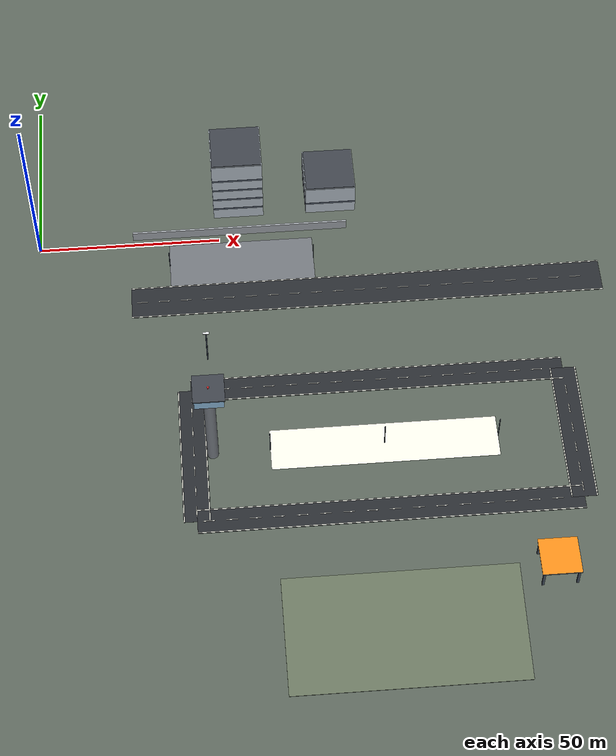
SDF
<sdf version="1.9">
 <world name="autonomous_city">
  <model name="ground">
   <static>true</static>
   <link name="link">
    <collision name="collision">
     <geometry><plane><normal>0 0 1</normal><size>600 600</size></plane></geometry>
     <surface><friction><ode><mu>100</mu><mu2>50</mu2></ode></friction></surface>
    </collision>
    <visual name="visual">
     <geometry><plane><normal>0 0 1</normal><size>600 600</size></plane></geometry>
     <material>
      <ambient>0.36 0.40 0.36 1</ambient>
      <diffuse>0.36 0.40 0.36 1</diffuse>
      <specular>0.15 0.15 0.15 1</specular>
     </material>
    </visual>
   </link>
  </model>
  <model name="ops_tower">
   <static>true</static>
   <pose>45 -70 0 0 0 0</pose>
   <link name="link">
    <visual name="mast">
     <pose>0 0 14.0 0 0 0</pose>
     <geometry><cylinder><radius>1.500</radius><length>28.000</length></cylinder></geometry>
     <material>
      <ambient>0.48 0.50 0.53 1</ambient>
      <diffuse>0.48 0.50 0.53 1</diffuse>
      <specular>0.15 0.15 0.15 1</specular>
     </material>
    </visual>
    <collision name="mast_c">
     <pose>0 0 14.0 0 0 0</pose>
     <geometry><cylinder><radius>1.500</radius><length>28.000</length></cylinder></geometry>
    </collision>
    <visual name="cabin">
     <pose>0 0 29.5 0 0 0</pose>
     <geometry><box><size>7.500 7.500 3.000</size></box></geometry>
     <material>
      <ambient>0.55 0.72 0.85 0.9</ambient>
      <diffuse>0.55 0.72 0.85 0.9</diffuse>
      <specular>0.15 0.15 0.15 1</specular>
     </material>
    </visual>
    <collision name="cabin_c">
     <pose>0 0 29.5 0 0 0</pose>
     <geometry><box><size>7.500 7.500 3.000</size></box></geometry>
    </collision>
    <visual name="cabin_roof">
     <pose>0 0 31.15 0 0 0</pose>
     <geometry><box><size>8.100 8.100 0.300</size></box></geometry>
     <material>
      <ambient>0.24 0.26 0.29 1</ambient>
      <diffuse>0.24 0.26 0.29 1</diffuse>
      <specular>0.15 0.15 0.15 1</specular>
     </material>
    </visual>
    <collision name="cabin_roof_c">
     <pose>0 0 31.15 0 0 0</pose>
     <geometry><box><size>8.100 8.100 0.300</size></box></geometry>
    </collision>
    <visual name="beacon">
     <pose>0 0 31.6 0 0 0</pose>
     <geometry><cylinder><radius>0.250</radius><length>0.500</length></cylinder></geometry>
     <material>
      <ambient>0.95 0.20 0.20 1</ambient>
      <diffuse>0.95 0.20 0.20 1</diffuse>
      <specular>0.15 0.15 0.15 1</specular>
      <emissive>0.6 0.1 0.1 1</emissive>
     </material>
    </visual>
   </link>
  </model>
  <model name="ops_mast_02">
   <static>true</static>
   <pose>45 -40 0 0 0 0</pose>
   <link name="link">
    <visual name="mast">
     <pose>0 0 6.0 0 0 0</pose>
     <geometry><cylinder><radius>0.180</radius><length>12.000</length></cylinder></geometry>
     <material>
      <ambient>0.26 0.30 0.36 1</ambient>
      <diffuse>0.26 0.30 0.36 1</diffuse>
      <specular>0.15 0.15 0.15 1</specular>
     </material>
    </visual>
    <collision name="mast_c">
     <pose>0 0 6.0 0 0 0</pose>
     <geometry><cylinder><radius>0.180</radius><length>12.000</length></cylinder></geometry>
    </collision>
    <visual name="head">
     <pose>0 0 12.15 0 0 0</pose>
     <geometry><box><size>1.600 0.600 0.300</size></box></geometry>
     <material>
      <ambient>0.92 0.93 0.94 1</ambient>
      <diffuse>0.92 0.93 0.94 1</diffuse>
      <specular>0.15 0.15 0.15 1</specular>
      <emissive>0.5 0.5 0.45 1</emissive>
     </material>
    </visual>
   </link>
  </model>
  <model name="building_02">
   <static>true</static>
   <pose>56 15 0 0 0 0.0</pose>
   <link name="link">
    <visual name="core">
     <pose>0 0 11.0 0 0 0</pose>
     <geometry><box><size>14.000 14.000 22.000</size></box></geometry>
     <material>
      <ambient>0.70 0.74 0.78 1</ambient>
      <diffuse>0.70 0.74 0.78 1</diffuse>
      <specular>0.15 0.15 0.15 1</specular>
     </material>
    </visual>
    <collision name="core_c">
     <pose>0 0 11.0 0 0 0</pose>
     <geometry><box><size>14.000 14.000 22.000</size></box></geometry>
    </collision>
    <visual name="band1">
     <pose>0 0 4.00 0 0 0</pose>
     <geometry><box><size>14.060 14.060 0.600</size></box></geometry>
     <material>
      <ambient>0.30 0.34 0.40 1</ambient>
      <diffuse>0.30 0.34 0.40 1</diffuse>
      <specular>0.15 0.15 0.15 1</specular>
     </material>
    </visual>
    <visual name="band2">
     <pose>0 0 8.00 0 0 0</pose>
     <geometry><box><size>14.060 14.060 0.600</size></box></geometry>
     <material>
      <ambient>0.30 0.34 0.40 1</ambient>
      <diffuse>0.30 0.34 0.40 1</diffuse>
      <specular>0.15 0.15 0.15 1</specular>
     </material>
    </visual>
    <visual name="band3">
     <pose>0 0 12.00 0 0 0</pose>
     <geometry><box><size>14.060 14.060 0.600</size></box></geometry>
     <material>
      <ambient>0.30 0.34 0.40 1</ambient>
      <diffuse>0.30 0.34 0.40 1</diffuse>
      <specular>0.15 0.15 0.15 1</specular>
     </material>
    </visual>
    <visual name="band4">
     <pose>0 0 16.00 0 0 0</pose>
     <geometry><box><size>14.060 14.060 0.600</size></box></geometry>
     <material>
      <ambient>0.30 0.34 0.40 1</ambient>
      <diffuse>0.30 0.34 0.40 1</diffuse>
      <specular>0.15 0.15 0.15 1</specular>
     </material>
    </visual>
    <visual name="roof">
     <pose>0 0 22.15 0 0 0</pose>
     <geometry><box><size>13.600 13.600 0.300</size></box></geometry>
     <material>
      <ambient>0.24 0.26 0.29 1</ambient>
      <diffuse>0.24 0.26 0.29 1</diffuse>
      <specular>0.15 0.15 0.15 1</specular>
     </material>
    </visual>
    <collision name="roof_c">
     <pose>0 0 22.15 0 0 0</pose>
     <geometry><box><size>13.600 13.600 0.300</size></box></geometry>
    </collision>
   </link>
  </model>
  <model name="building_03">
   <static>true</static>
   <pose>82 15 0 0 0 0.0</pose>
   <link name="link">
    <visual name="core">
     <pose>0 0 5.0 0 0 0</pose>
     <geometry><box><size>14.000 14.000 10.000</size></box></geometry>
     <material>
      <ambient>0.70 0.74 0.78 1</ambient>
      <diffuse>0.70 0.74 0.78 1</diffuse>
      <specular>0.15 0.15 0.15 1</specular>
     </material>
    </visual>
    <collision name="core_c">
     <pose>0 0 5.0 0 0 0</pose>
     <geometry><box><size>14.000 14.000 10.000</size></box></geometry>
    </collision>
    <visual name="band1">
     <pose>0 0 4.00 0 0 0</pose>
     <geometry><box><size>14.060 14.060 0.600</size></box></geometry>
     <material>
      <ambient>0.30 0.34 0.40 1</ambient>
      <diffuse>0.30 0.34 0.40 1</diffuse>
      <specular>0.15 0.15 0.15 1</specular>
     </material>
    </visual>
    <visual name="roof">
     <pose>0 0 10.15 0 0 0</pose>
     <geometry><box><size>13.600 13.600 0.300</size></box></geometry>
     <material>
      <ambient>0.24 0.26 0.29 1</ambient>
      <diffuse>0.24 0.26 0.29 1</diffuse>
      <specular>0.15 0.15 0.15 1</specular>
     </material>
    </visual>
    <collision name="roof_c">
     <pose>0 0 10.15 0 0 0</pose>
     <geometry><box><size>13.600 13.600 0.300</size></box></geometry>
    </collision>
   </link>
  </model>
  <model name="courtyard_wall">
   <static>true</static>
   <pose>56 2 0 0 0 0.0</pose>
   <link name="link">
    <visual name="wall">
     <pose>0 0 1.5 0 0 0</pose>
     <geometry><box><size>60.000 0.500 3.000</size></box></geometry>
     <material>
      <ambient>0.62 0.64 0.66 1</ambient>
      <diffuse>0.62 0.64 0.66 1</diffuse>
      <specular>0.15 0.15 0.15 1</specular>
     </material>
    </visual>
    <collision name="wall_c">
     <pose>0 0 1.5 0 0 0</pose>
     <geometry><box><size>60.000 0.500 3.000</size></box></geometry>
    </collision>
   </link>
  </model>
  <model name="plaza">
   <static>true</static>
   <pose>56 -8 0 0 0 0.0</pose>
   <link name="link">
    <visual name="mark">
     <pose>0 0 0.05 0 0 0</pose>
     <geometry><box><size>40.000 14.000 0.015</size></box></geometry>
     <material>
      <ambient>0.44 0.46 0.48 1</ambient>
      <diffuse>0.44 0.46 0.48 1</diffuse>
      <specular>0.15 0.15 0.15 1</specular>
     </material>
    </visual>
   </link>
  </model>
  <model name="plaza_pole_01">
   <static>true</static>
   <pose>36 -8 0 0 0 0</pose>
   <link name="link">
    <visual name="pole">
     <pose>0 0 3.0 0 0 0</pose>
     <geometry><cylinder><radius>0.120</radius><length>6.000</length></cylinder></geometry>
     <material>
      <ambient>0.26 0.30 0.36 1</ambient>
      <diffuse>0.26 0.30 0.36 1</diffuse>
      <specular>0.15 0.15 0.15 1</specular>
     </material>
    </visual>
    <collision name="pole_c">
     <pose>0 0 3.0 0 0 0</pose>
     <geometry><cylinder><radius>0.120</radius><length>6.000</length></cylinder></geometry>
    </collision>
   </link>
  </model>
  <model name="plaza_pole_02">
   <static>true</static>
   <pose>76 -8 0 0 0 0</pose>
   <link name="link">
    <visual name="pole">
     <pose>0 0 3.0 0 0 0</pose>
     <geometry><cylinder><radius>0.120</radius><length>6.000</length></cylinder></geometry>
     <material>
      <ambient>0.26 0.30 0.36 1</ambient>
      <diffuse>0.26 0.30 0.36 1</diffuse>
      <specular>0.15 0.15 0.15 1</specular>
     </material>
    </visual>
    <collision name="pole_c">
     <pose>0 0 3.0 0 0 0</pose>
     <geometry><cylinder><radius>0.120</radius><length>6.000</length></cylinder></geometry>
    </collision>
   </link>
  </model>
  <model name="track_s">
   <static>true</static>
   <pose>90 -90 0 0 0 0.0</pose>
   <link name="link">
    <visual name="asphalt">
     <pose>0 0 0.02 0 0 0</pose>
     <geometry><box><size>100.000 7.000 0.040</size></box></geometry>
     <material>
      <ambient>0.16 0.17 0.19 1</ambient>
      <diffuse>0.16 0.17 0.19 1</diffuse>
      <specular>0.15 0.15 0.15 1</specular>
     </material>
    </visual>
    <visual name="dash0">
     <pose>-47.00 0 0.045 0 0 0</pose>
     <geometry><box><size>3.000 0.200 0.010</size></box></geometry>
     <material>
      <ambient>0.95 0.95 0.90 1</ambient>
      <diffuse>0.95 0.95 0.90 1</diffuse>
      <specular>0.15 0.15 0.15 1</specular>
     </material>
    </visual>
    <visual name="dash1">
     <pose>-41.00 0 0.045 0 0 0</pose>
     <geometry><box><size>3.000 0.200 0.010</size></box></geometry>
     <material>
      <ambient>0.95 0.95 0.90 1</ambient>
      <diffuse>0.95 0.95 0.90 1</diffuse>
      <specular>0.15 0.15 0.15 1</specular>
     </material>
    </visual>
    <visual name="dash2">
     <pose>-35.00 0 0.045 0 0 0</pose>
     <geometry><box><size>3.000 0.200 0.010</size></box></geometry>
     <material>
      <ambient>0.95 0.95 0.90 1</ambient>
      <diffuse>0.95 0.95 0.90 1</diffuse>
      <specular>0.15 0.15 0.15 1</specular>
     </material>
    </visual>
    <visual name="dash3">
     <pose>-29.00 0 0.045 0 0 0</pose>
     <geometry><box><size>3.000 0.200 0.010</size></box></geometry>
     <material>
      <ambient>0.95 0.95 0.90 1</ambient>
      <diffuse>0.95 0.95 0.90 1</diffuse>
      <specular>0.15 0.15 0.15 1</specular>
     </material>
    </visual>
    <visual name="dash4">
     <pose>-23.00 0 0.045 0 0 0</pose>
     <geometry><box><size>3.000 0.200 0.010</size></box></geometry>
     <material>
      <ambient>0.95 0.95 0.90 1</ambient>
      <diffuse>0.95 0.95 0.90 1</diffuse>
      <specular>0.15 0.15 0.15 1</specular>
     </material>
    </visual>
    <visual name="dash5">
     <pose>-17.00 0 0.045 0 0 0</pose>
     <geometry><box><size>3.000 0.200 0.010</size></box></geometry>
     <material>
      <ambient>0.95 0.95 0.90 1</ambient>
      <diffuse>0.95 0.95 0.90 1</diffuse>
      <specular>0.15 0.15 0.15 1</specular>
     </material>
    </visual>
    <visual name="dash6">
     <pose>-11.00 0 0.045 0 0 0</pose>
     <geometry><box><size>3.000 0.200 0.010</size></box></geometry>
     <material>
      <ambient>0.95 0.95 0.90 1</ambient>
      <diffuse>0.95 0.95 0.90 1</diffuse>
      <specular>0.15 0.15 0.15 1</specular>
     </material>
    </visual>
    <visual name="dash7">
     <pose>-5.00 0 0.045 0 0 0</pose>
     <geometry><box><size>3.000 0.200 0.010</size></box></geometry>
     <material>
      <ambient>0.95 0.95 0.90 1</ambient>
      <diffuse>0.95 0.95 0.90 1</diffuse>
      <specular>0.15 0.15 0.15 1</specular>
     </material>
    </visual>
    <visual name="dash8">
     <pose>1.00 0 0.045 0 0 0</pose>
     <geometry><box><size>3.000 0.200 0.010</size></box></geometry>
     <material>
      <ambient>0.95 0.95 0.90 1</ambient>
      <diffuse>0.95 0.95 0.90 1</diffuse>
      <specular>0.15 0.15 0.15 1</specular>
     </material>
    </visual>
    <visual name="dash9">
     <pose>7.00 0 0.045 0 0 0</pose>
     <geometry><box><size>3.000 0.200 0.010</size></box></geometry>
     <material>
      <ambient>0.95 0.95 0.90 1</ambient>
      <diffuse>0.95 0.95 0.90 1</diffuse>
      <specular>0.15 0.15 0.15 1</specular>
     </material>
    </visual>
    <visual name="dash10">
     <pose>13.00 0 0.045 0 0 0</pose>
     <geometry><box><size>3.000 0.200 0.010</size></box></geometry>
     <material>
      <ambient>0.95 0.95 0.90 1</ambient>
      <diffuse>0.95 0.95 0.90 1</diffuse>
      <specular>0.15 0.15 0.15 1</specular>
     </material>
    </visual>
    <visual name="dash11">
     <pose>19.00 0 0.045 0 0 0</pose>
     <geometry><box><size>3.000 0.200 0.010</size></box></geometry>
     <material>
      <ambient>0.95 0.95 0.90 1</ambient>
      <diffuse>0.95 0.95 0.90 1</diffuse>
      <specular>0.15 0.15 0.15 1</specular>
     </material>
    </visual>
    <visual name="dash12">
     <pose>25.00 0 0.045 0 0 0</pose>
     <geometry><box><size>3.000 0.200 0.010</size></box></geometry>
     <material>
      <ambient>0.95 0.95 0.90 1</ambient>
      <diffuse>0.95 0.95 0.90 1</diffuse>
      <specular>0.15 0.15 0.15 1</specular>
     </material>
    </visual>
    <visual name="dash13">
     <pose>31.00 0 0.045 0 0 0</pose>
     <geometry><box><size>3.000 0.200 0.010</size></box></geometry>
     <material>
      <ambient>0.95 0.95 0.90 1</ambient>
      <diffuse>0.95 0.95 0.90 1</diffuse>
      <specular>0.15 0.15 0.15 1</specular>
     </material>
    </visual>
    <visual name="dash14">
     <pose>37.00 0 0.045 0 0 0</pose>
     <geometry><box><size>3.000 0.200 0.010</size></box></geometry>
     <material>
      <ambient>0.95 0.95 0.90 1</ambient>
      <diffuse>0.95 0.95 0.90 1</diffuse>
      <specular>0.15 0.15 0.15 1</specular>
     </material>
    </visual>
    <visual name="dash15">
     <pose>43.00 0 0.045 0 0 0</pose>
     <geometry><box><size>3.000 0.200 0.010</size></box></geometry>
     <material>
      <ambient>0.95 0.95 0.90 1</ambient>
      <diffuse>0.95 0.95 0.90 1</diffuse>
      <specular>0.15 0.15 0.15 1</specular>
     </material>
    </visual>
    <visual name="edge_l">
     <pose>0 3.30 0.045 0 0 0</pose>
     <geometry><box><size>100.000 0.250 0.010</size></box></geometry>
     <material>
      <ambient>0.95 0.95 0.90 1</ambient>
      <diffuse>0.95 0.95 0.90 1</diffuse>
      <specular>0.15 0.15 0.15 1</specular>
     </material>
    </visual>
    <visual name="edge_r">
     <pose>0 -3.30 0.045 0 0 0</pose>
     <geometry><box><size>100.000 0.250 0.010</size></box></geometry>
     <material>
      <ambient>0.95 0.95 0.90 1</ambient>
      <diffuse>0.95 0.95 0.90 1</diffuse>
      <specular>0.15 0.15 0.15 1</specular>
     </material>
    </visual>
   </link>
  </model>
  <model name="track_n">
   <static>true</static>
   <pose>90 -50 0 0 0 0.0</pose>
   <link name="link">
    <visual name="asphalt">
     <pose>0 0 0.02 0 0 0</pose>
     <geometry><box><size>100.000 7.000 0.040</size></box></geometry>
     <material>
      <ambient>0.16 0.17 0.19 1</ambient>
      <diffuse>0.16 0.17 0.19 1</diffuse>
      <specular>0.15 0.15 0.15 1</specular>
     </material>
    </visual>
    <visual name="dash0">
     <pose>-47.00 0 0.045 0 0 0</pose>
     <geometry><box><size>3.000 0.200 0.010</size></box></geometry>
     <material>
      <ambient>0.95 0.95 0.90 1</ambient>
      <diffuse>0.95 0.95 0.90 1</diffuse>
      <specular>0.15 0.15 0.15 1</specular>
     </material>
    </visual>
    <visual name="dash1">
     <pose>-41.00 0 0.045 0 0 0</pose>
     <geometry><box><size>3.000 0.200 0.010</size></box></geometry>
     <material>
      <ambient>0.95 0.95 0.90 1</ambient>
      <diffuse>0.95 0.95 0.90 1</diffuse>
      <specular>0.15 0.15 0.15 1</specular>
     </material>
    </visual>
    <visual name="dash2">
     <pose>-35.00 0 0.045 0 0 0</pose>
     <geometry><box><size>3.000 0.200 0.010</size></box></geometry>
     <material>
      <ambient>0.95 0.95 0.90 1</ambient>
      <diffuse>0.95 0.95 0.90 1</diffuse>
      <specular>0.15 0.15 0.15 1</specular>
     </material>
    </visual>
    <visual name="dash3">
     <pose>-29.00 0 0.045 0 0 0</pose>
     <geometry><box><size>3.000 0.200 0.010</size></box></geometry>
     <material>
      <ambient>0.95 0.95 0.90 1</ambient>
      <diffuse>0.95 0.95 0.90 1</diffuse>
      <specular>0.15 0.15 0.15 1</specular>
     </material>
    </visual>
    <visual name="dash4">
     <pose>-23.00 0 0.045 0 0 0</pose>
     <geometry><box><size>3.000 0.200 0.010</size></box></geometry>
     <material>
      <ambient>0.95 0.95 0.90 1</ambient>
      <diffuse>0.95 0.95 0.90 1</diffuse>
      <specular>0.15 0.15 0.15 1</specular>
     </material>
    </visual>
    <visual name="dash5">
     <pose>-17.00 0 0.045 0 0 0</pose>
     <geometry><box><size>3.000 0.200 0.010</size></box></geometry>
     <material>
      <ambient>0.95 0.95 0.90 1</ambient>
      <diffuse>0.95 0.95 0.90 1</diffuse>
      <specular>0.15 0.15 0.15 1</specular>
     </material>
    </visual>
    <visual name="dash6">
     <pose>-11.00 0 0.045 0 0 0</pose>
     <geometry><box><size>3.000 0.200 0.010</size></box></geometry>
     <material>
      <ambient>0.95 0.95 0.90 1</ambient>
      <diffuse>0.95 0.95 0.90 1</diffuse>
      <specular>0.15 0.15 0.15 1</specular>
     </material>
    </visual>
    <visual name="dash7">
     <pose>-5.00 0 0.045 0 0 0</pose>
     <geometry><box><size>3.000 0.200 0.010</size></box></geometry>
     <material>
      <ambient>0.95 0.95 0.90 1</ambient>
      <diffuse>0.95 0.95 0.90 1</diffuse>
      <specular>0.15 0.15 0.15 1</specular>
     </material>
    </visual>
    <visual name="dash8">
     <pose>1.00 0 0.045 0 0 0</pose>
     <geometry><box><size>3.000 0.200 0.010</size></box></geometry>
     <material>
      <ambient>0.95 0.95 0.90 1</ambient>
      <diffuse>0.95 0.95 0.90 1</diffuse>
      <specular>0.15 0.15 0.15 1</specular>
     </material>
    </visual>
    <visual name="dash9">
     <pose>7.00 0 0.045 0 0 0</pose>
     <geometry><box><size>3.000 0.200 0.010</size></box></geometry>
     <material>
      <ambient>0.95 0.95 0.90 1</ambient>
      <diffuse>0.95 0.95 0.90 1</diffuse>
      <specular>0.15 0.15 0.15 1</specular>
     </material>
    </visual>
    <visual name="dash10">
     <pose>13.00 0 0.045 0 0 0</pose>
     <geometry><box><size>3.000 0.200 0.010</size></box></geometry>
     <material>
      <ambient>0.95 0.95 0.90 1</ambient>
      <diffuse>0.95 0.95 0.90 1</diffuse>
      <specular>0.15 0.15 0.15 1</specular>
     </material>
    </visual>
    <visual name="dash11">
     <pose>19.00 0 0.045 0 0 0</pose>
     <geometry><box><size>3.000 0.200 0.010</size></box></geometry>
     <material>
      <ambient>0.95 0.95 0.90 1</ambient>
      <diffuse>0.95 0.95 0.90 1</diffuse>
      <specular>0.15 0.15 0.15 1</specular>
     </material>
    </visual>
    <visual name="dash12">
     <pose>25.00 0 0.045 0 0 0</pose>
     <geometry><box><size>3.000 0.200 0.010</size></box></geometry>
     <material>
      <ambient>0.95 0.95 0.90 1</ambient>
      <diffuse>0.95 0.95 0.90 1</diffuse>
      <specular>0.15 0.15 0.15 1</specular>
     </material>
    </visual>
    <visual name="dash13">
     <pose>31.00 0 0.045 0 0 0</pose>
     <geometry><box><size>3.000 0.200 0.010</size></box></geometry>
     <material>
      <ambient>0.95 0.95 0.90 1</ambient>
      <diffuse>0.95 0.95 0.90 1</diffuse>
      <specular>0.15 0.15 0.15 1</specular>
     </material>
    </visual>
    <visual name="dash14">
     <pose>37.00 0 0.045 0 0 0</pose>
     <geometry><box><size>3.000 0.200 0.010</size></box></geometry>
     <material>
      <ambient>0.95 0.95 0.90 1</ambient>
      <diffuse>0.95 0.95 0.90 1</diffuse>
      <specular>0.15 0.15 0.15 1</specular>
     </material>
    </visual>
    <visual name="dash15">
     <pose>43.00 0 0.045 0 0 0</pose>
     <geometry><box><size>3.000 0.200 0.010</size></box></geometry>
     <material>
      <ambient>0.95 0.95 0.90 1</ambient>
      <diffuse>0.95 0.95 0.90 1</diffuse>
      <specular>0.15 0.15 0.15 1</specular>
     </material>
    </visual>
    <visual name="edge_l">
     <pose>0 3.30 0.045 0 0 0</pose>
     <geometry><box><size>100.000 0.250 0.010</size></box></geometry>
     <material>
      <ambient>0.95 0.95 0.90 1</ambient>
      <diffuse>0.95 0.95 0.90 1</diffuse>
      <specular>0.15 0.15 0.15 1</specular>
     </material>
    </visual>
    <visual name="edge_r">
     <pose>0 -3.30 0.045 0 0 0</pose>
     <geometry><box><size>100.000 0.250 0.010</size></box></geometry>
     <material>
      <ambient>0.95 0.95 0.90 1</ambient>
      <diffuse>0.95 0.95 0.90 1</diffuse>
      <specular>0.15 0.15 0.15 1</specular>
     </material>
    </visual>
   </link>
  </model>
  <model name="track_w">
   <static>true</static>
   <pose>40 -70 0 0 0 1.5708</pose>
   <link name="link">
    <visual name="asphalt">
     <pose>0 0 0.02 0 0 0</pose>
     <geometry><box><size>40.000 7.000 0.040</size></box></geometry>
     <material>
      <ambient>0.16 0.17 0.19 1</ambient>
      <diffuse>0.16 0.17 0.19 1</diffuse>
      <specular>0.15 0.15 0.15 1</specular>
     </material>
    </visual>
    <visual name="dash0">
     <pose>-17.00 0 0.045 0 0 0</pose>
     <geometry><box><size>3.000 0.200 0.010</size></box></geometry>
     <material>
      <ambient>0.95 0.95 0.90 1</ambient>
      <diffuse>0.95 0.95 0.90 1</diffuse>
      <specular>0.15 0.15 0.15 1</specular>
     </material>
    </visual>
    <visual name="dash1">
     <pose>-11.00 0 0.045 0 0 0</pose>
     <geometry><box><size>3.000 0.200 0.010</size></box></geometry>
     <material>
      <ambient>0.95 0.95 0.90 1</ambient>
      <diffuse>0.95 0.95 0.90 1</diffuse>
      <specular>0.15 0.15 0.15 1</specular>
     </material>
    </visual>
    <visual name="dash2">
     <pose>-5.00 0 0.045 0 0 0</pose>
     <geometry><box><size>3.000 0.200 0.010</size></box></geometry>
     <material>
      <ambient>0.95 0.95 0.90 1</ambient>
      <diffuse>0.95 0.95 0.90 1</diffuse>
      <specular>0.15 0.15 0.15 1</specular>
     </material>
    </visual>
    <visual name="dash3">
     <pose>1.00 0 0.045 0 0 0</pose>
     <geometry><box><size>3.000 0.200 0.010</size></box></geometry>
     <material>
      <ambient>0.95 0.95 0.90 1</ambient>
      <diffuse>0.95 0.95 0.90 1</diffuse>
      <specular>0.15 0.15 0.15 1</specular>
     </material>
    </visual>
    <visual name="dash4">
     <pose>7.00 0 0.045 0 0 0</pose>
     <geometry><box><size>3.000 0.200 0.010</size></box></geometry>
     <material>
      <ambient>0.95 0.95 0.90 1</ambient>
      <diffuse>0.95 0.95 0.90 1</diffuse>
      <specular>0.15 0.15 0.15 1</specular>
     </material>
    </visual>
    <visual name="dash5">
     <pose>13.00 0 0.045 0 0 0</pose>
     <geometry><box><size>3.000 0.200 0.010</size></box></geometry>
     <material>
      <ambient>0.95 0.95 0.90 1</ambient>
      <diffuse>0.95 0.95 0.90 1</diffuse>
      <specular>0.15 0.15 0.15 1</specular>
     </material>
    </visual>
    <visual name="edge_l">
     <pose>0 3.30 0.045 0 0 0</pose>
     <geometry><box><size>40.000 0.250 0.010</size></box></geometry>
     <material>
      <ambient>0.95 0.95 0.90 1</ambient>
      <diffuse>0.95 0.95 0.90 1</diffuse>
      <specular>0.15 0.15 0.15 1</specular>
     </material>
    </visual>
    <visual name="edge_r">
     <pose>0 -3.30 0.045 0 0 0</pose>
     <geometry><box><size>40.000 0.250 0.010</size></box></geometry>
     <material>
      <ambient>0.95 0.95 0.90 1</ambient>
      <diffuse>0.95 0.95 0.90 1</diffuse>
      <specular>0.15 0.15 0.15 1</specular>
     </material>
    </visual>
   </link>
  </model>
  <model name="track_e">
   <static>true</static>
   <pose>140 -70 0 0 0 1.5708</pose>
   <link name="link">
    <visual name="asphalt">
     <pose>0 0 0.02 0 0 0</pose>
     <geometry><box><size>40.000 7.000 0.040</size></box></geometry>
     <material>
      <ambient>0.16 0.17 0.19 1</ambient>
      <diffuse>0.16 0.17 0.19 1</diffuse>
      <specular>0.15 0.15 0.15 1</specular>
     </material>
    </visual>
    <visual name="dash0">
     <pose>-17.00 0 0.045 0 0 0</pose>
     <geometry><box><size>3.000 0.200 0.010</size></box></geometry>
     <material>
      <ambient>0.95 0.95 0.90 1</ambient>
      <diffuse>0.95 0.95 0.90 1</diffuse>
      <specular>0.15 0.15 0.15 1</specular>
     </material>
    </visual>
    <visual name="dash1">
     <pose>-11.00 0 0.045 0 0 0</pose>
     <geometry><box><size>3.000 0.200 0.010</size></box></geometry>
     <material>
      <ambient>0.95 0.95 0.90 1</ambient>
      <diffuse>0.95 0.95 0.90 1</diffuse>
      <specular>0.15 0.15 0.15 1</specular>
     </material>
    </visual>
    <visual name="dash2">
     <pose>-5.00 0 0.045 0 0 0</pose>
     <geometry><box><size>3.000 0.200 0.010</size></box></geometry>
     <material>
      <ambient>0.95 0.95 0.90 1</ambient>
      <diffuse>0.95 0.95 0.90 1</diffuse>
      <specular>0.15 0.15 0.15 1</specular>
     </material>
    </visual>
    <visual name="dash3">
     <pose>1.00 0 0.045 0 0 0</pose>
     <geometry><box><size>3.000 0.200 0.010</size></box></geometry>
     <material>
      <ambient>0.95 0.95 0.90 1</ambient>
      <diffuse>0.95 0.95 0.90 1</diffuse>
      <specular>0.15 0.15 0.15 1</specular>
     </material>
    </visual>
    <visual name="dash4">
     <pose>7.00 0 0.045 0 0 0</pose>
     <geometry><box><size>3.000 0.200 0.010</size></box></geometry>
     <material>
      <ambient>0.95 0.95 0.90 1</ambient>
      <diffuse>0.95 0.95 0.90 1</diffuse>
      <specular>0.15 0.15 0.15 1</specular>
     </material>
    </visual>
    <visual name="dash5">
     <pose>13.00 0 0.045 0 0 0</pose>
     <geometry><box><size>3.000 0.200 0.010</size></box></geometry>
     <material>
      <ambient>0.95 0.95 0.90 1</ambient>
      <diffuse>0.95 0.95 0.90 1</diffuse>
      <specular>0.15 0.15 0.15 1</specular>
     </material>
    </visual>
    <visual name="edge_l">
     <pose>0 3.30 0.045 0 0 0</pose>
     <geometry><box><size>40.000 0.250 0.010</size></box></geometry>
     <material>
      <ambient>0.95 0.95 0.90 1</ambient>
      <diffuse>0.95 0.95 0.90 1</diffuse>
      <specular>0.15 0.15 0.15 1</specular>
     </material>
    </visual>
    <visual name="edge_r">
     <pose>0 -3.30 0.045 0 0 0</pose>
     <geometry><box><size>40.000 0.250 0.010</size></box></geometry>
     <material>
      <ambient>0.95 0.95 0.90 1</ambient>
      <diffuse>0.95 0.95 0.90 1</diffuse>
      <specular>0.15 0.15 0.15 1</specular>
     </material>
    </visual>
   </link>
  </model>
  <model name="field_pole_01">
   <static>true</static>
   <pose>60 -70 0 0 0 0</pose>
   <link name="link">
    <visual name="pole">
     <pose>0 0 4.0 0 0 0</pose>
     <geometry><cylinder><radius>0.120</radius><length>8.000</length></cylinder></geometry>
     <material>
      <ambient>0.26 0.30 0.36 1</ambient>
      <diffuse>0.26 0.30 0.36 1</diffuse>
      <specular>0.15 0.15 0.15 1</specular>
     </material>
    </visual>
    <collision name="pole_c">
     <pose>0 0 4.0 0 0 0</pose>
     <geometry><cylinder><radius>0.120</radius><length>8.000</length></cylinder></geometry>
    </collision>
   </link>
  </model>
  <model name="field_pole_02">
   <static>true</static>
   <pose>90 -70 0 0 0 0</pose>
   <link name="link">
    <visual name="pole">
     <pose>0 0 4.0 0 0 0</pose>
     <geometry><cylinder><radius>0.120</radius><length>8.000</length></cylinder></geometry>
     <material>
      <ambient>0.26 0.30 0.36 1</ambient>
      <diffuse>0.26 0.30 0.36 1</diffuse>
      <specular>0.15 0.15 0.15 1</specular>
     </material>
    </visual>
    <collision name="pole_c">
     <pose>0 0 4.0 0 0 0</pose>
     <geometry><cylinder><radius>0.120</radius><length>8.000</length></cylinder></geometry>
    </collision>
   </link>
  </model>
  <model name="field_pole_03">
   <static>true</static>
   <pose>120 -70 0 0 0 0</pose>
   <link name="link">
    <visual name="pole">
     <pose>0 0 4.0 0 0 0</pose>
     <geometry><cylinder><radius>0.120</radius><length>8.000</length></cylinder></geometry>
     <material>
      <ambient>0.26 0.30 0.36 1</ambient>
      <diffuse>0.26 0.30 0.36 1</diffuse>
      <specular>0.15 0.15 0.15 1</specular>
     </material>
    </visual>
    <collision name="pole_c">
     <pose>0 0 4.0 0 0 0</pose>
     <geometry><cylinder><radius>0.120</radius><length>8.000</length></cylinder></geometry>
    </collision>
   </link>
  </model>
  <model name="field_grid">
   <static>true</static>
   <pose>90 -70 0 0 0 0.0</pose>
   <link name="link">
    <visual name="mark">
     <pose>0 0 0.05 0 0 0</pose>
     <geometry><box><size>60.000 12.000 0.015</size></box></geometry>
     <material>
      <ambient>0.95 0.95 0.90 1</ambient>
      <diffuse>0.95 0.95 0.90 1</diffuse>
      <specular>0.15 0.15 0.15 1</specular>
     </material>
    </visual>
   </link>
  </model>
  <model name="field_platform">
   <static>true</static>
   <pose>130 -110 0 0 0 0.0</pose>
   <link name="link">
    <visual name="deck">
     <pose>0 0 6 0 0 0</pose>
     <geometry><box><size>10.000 10.000 0.400</size></box></geometry>
     <material>
      <ambient>0.62 0.64 0.66 1</ambient>
      <diffuse>0.62 0.64 0.66 1</diffuse>
      <specular>0.15 0.15 0.15 1</specular>
     </material>
    </visual>
    <collision name="deck_c">
     <pose>0 0 6 0 0 0</pose>
     <geometry><box><size>10.000 10.000 0.400</size></box></geometry>
    </collision>
    <visual name="edge">
     <pose>0 0 6.25 0 0 0</pose>
     <geometry><box><size>10.100 10.100 0.100</size></box></geometry>
     <material>
      <ambient>0.98 0.55 0.10 1</ambient>
      <diffuse>0.98 0.55 0.10 1</diffuse>
      <specular>0.15 0.15 0.15 1</specular>
     </material>
    </visual>
    <visual name="leg0">
     <pose>4.4 4.4 3.0 0 0 0</pose>
     <geometry><box><size>0.600 0.600 6.000</size></box></geometry>
     <material>
      <ambient>0.26 0.30 0.36 1</ambient>
      <diffuse>0.26 0.30 0.36 1</diffuse>
      <specular>0.15 0.15 0.15 1</specular>
     </material>
    </visual>
    <collision name="leg0_c">
     <pose>4.4 4.4 3.0 0 0 0</pose>
     <geometry><box><size>0.600 0.600 6.000</size></box></geometry>
    </collision>
    <visual name="leg1">
     <pose>4.4 -4.4 3.0 0 0 0</pose>
     <geometry><box><size>0.600 0.600 6.000</size></box></geometry>
     <material>
      <ambient>0.26 0.30 0.36 1</ambient>
      <diffuse>0.26 0.30 0.36 1</diffuse>
      <specular>0.15 0.15 0.15 1</specular>
     </material>
    </visual>
    <collision name="leg1_c">
     <pose>4.4 -4.4 3.0 0 0 0</pose>
     <geometry><box><size>0.600 0.600 6.000</size></box></geometry>
    </collision>
    <visual name="leg2">
     <pose>-4.4 4.4 3.0 0 0 0</pose>
     <geometry><box><size>0.600 0.600 6.000</size></box></geometry>
     <material>
      <ambient>0.26 0.30 0.36 1</ambient>
      <diffuse>0.26 0.30 0.36 1</diffuse>
      <specular>0.15 0.15 0.15 1</specular>
     </material>
    </visual>
    <collision name="leg2_c">
     <pose>-4.4 4.4 3.0 0 0 0</pose>
     <geometry><box><size>0.600 0.600 6.000</size></box></geometry>
    </collision>
    <visual name="leg3">
     <pose>-4.4 -4.4 3.0 0 0 0</pose>
     <geometry><box><size>0.600 0.600 6.000</size></box></geometry>
     <material>
      <ambient>0.26 0.30 0.36 1</ambient>
      <diffuse>0.26 0.30 0.36 1</diffuse>
      <specular>0.15 0.15 0.15 1</specular>
     </material>
    </visual>
    <collision name="leg3_c">
     <pose>-4.4 -4.4 3.0 0 0 0</pose>
     <geometry><box><size>0.600 0.600 6.000</size></box></geometry>
    </collision>
   </link>
  </model>
  <model name="main_road_e">
   <static>true</static>
   <pose>90 -20 0 0 0 0.0</pose>
   <link name="link">
    <visual name="asphalt">
     <pose>0 0 0.02 0 0 0</pose>
     <geometry><box><size>130.000 10.000 0.040</size></box></geometry>
     <material>
      <ambient>0.16 0.17 0.19 1</ambient>
      <diffuse>0.16 0.17 0.19 1</diffuse>
      <specular>0.15 0.15 0.15 1</specular>
     </material>
    </visual>
    <visual name="dash0">
     <pose>-62.00 0 0.045 0 0 0</pose>
     <geometry><box><size>3.000 0.200 0.010</size></box></geometry>
     <material>
      <ambient>0.95 0.95 0.90 1</ambient>
      <diffuse>0.95 0.95 0.90 1</diffuse>
      <specular>0.15 0.15 0.15 1</specular>
     </material>
    </visual>
    <visual name="dash1">
     <pose>-56.00 0 0.045 0 0 0</pose>
     <geometry><box><size>3.000 0.200 0.010</size></box></geometry>
     <material>
      <ambient>0.95 0.95 0.90 1</ambient>
      <diffuse>0.95 0.95 0.90 1</diffuse>
      <specular>0.15 0.15 0.15 1</specular>
     </material>
    </visual>
    <visual name="dash2">
     <pose>-50.00 0 0.045 0 0 0</pose>
     <geometry><box><size>3.000 0.200 0.010</size></box></geometry>
     <material>
      <ambient>0.95 0.95 0.90 1</ambient>
      <diffuse>0.95 0.95 0.90 1</diffuse>
      <specular>0.15 0.15 0.15 1</specular>
     </material>
    </visual>
    <visual name="dash3">
     <pose>-44.00 0 0.045 0 0 0</pose>
     <geometry><box><size>3.000 0.200 0.010</size></box></geometry>
     <material>
      <ambient>0.95 0.95 0.90 1</ambient>
      <diffuse>0.95 0.95 0.90 1</diffuse>
      <specular>0.15 0.15 0.15 1</specular>
     </material>
    </visual>
    <visual name="dash4">
     <pose>-38.00 0 0.045 0 0 0</pose>
     <geometry><box><size>3.000 0.200 0.010</size></box></geometry>
     <material>
      <ambient>0.95 0.95 0.90 1</ambient>
      <diffuse>0.95 0.95 0.90 1</diffuse>
      <specular>0.15 0.15 0.15 1</specular>
     </material>
    </visual>
    <visual name="dash5">
     <pose>-32.00 0 0.045 0 0 0</pose>
     <geometry><box><size>3.000 0.200 0.010</size></box></geometry>
     <material>
      <ambient>0.95 0.95 0.90 1</ambient>
      <diffuse>0.95 0.95 0.90 1</diffuse>
      <specular>0.15 0.15 0.15 1</specular>
     </material>
    </visual>
    <visual name="dash6">
     <pose>-26.00 0 0.045 0 0 0</pose>
     <geometry><box><size>3.000 0.200 0.010</size></box></geometry>
     <material>
      <ambient>0.95 0.95 0.90 1</ambient>
      <diffuse>0.95 0.95 0.90 1</diffuse>
      <specular>0.15 0.15 0.15 1</specular>
     </material>
    </visual>
    <visual name="dash7">
     <pose>-20.00 0 0.045 0 0 0</pose>
     <geometry><box><size>3.000 0.200 0.010</size></box></geometry>
     <material>
      <ambient>0.95 0.95 0.90 1</ambient>
      <diffuse>0.95 0.95 0.90 1</diffuse>
      <specular>0.15 0.15 0.15 1</specular>
     </material>
    </visual>
    <visual name="dash8">
     <pose>-14.00 0 0.045 0 0 0</pose>
     <geometry><box><size>3.000 0.200 0.010</size></box></geometry>
     <material>
      <ambient>0.95 0.95 0.90 1</ambient>
      <diffuse>0.95 0.95 0.90 1</diffuse>
      <specular>0.15 0.15 0.15 1</specular>
     </material>
    </visual>
    <visual name="dash9">
     <pose>-8.00 0 0.045 0 0 0</pose>
     <geometry><box><size>3.000 0.200 0.010</size></box></geometry>
     <material>
      <ambient>0.95 0.95 0.90 1</ambient>
      <diffuse>0.95 0.95 0.90 1</diffuse>
      <specular>0.15 0.15 0.15 1</specular>
     </material>
    </visual>
    <visual name="dash10">
     <pose>-2.00 0 0.045 0 0 0</pose>
     <geometry><box><size>3.000 0.200 0.010</size></box></geometry>
     <material>
      <ambient>0.95 0.95 0.90 1</ambient>
      <diffuse>0.95 0.95 0.90 1</diffuse>
      <specular>0.15 0.15 0.15 1</specular>
     </material>
    </visual>
    <visual name="dash11">
     <pose>4.00 0 0.045 0 0 0</pose>
     <geometry><box><size>3.000 0.200 0.010</size></box></geometry>
     <material>
      <ambient>0.95 0.95 0.90 1</ambient>
      <diffuse>0.95 0.95 0.90 1</diffuse>
      <specular>0.15 0.15 0.15 1</specular>
     </material>
    </visual>
    <visual name="dash12">
     <pose>10.00 0 0.045 0 0 0</pose>
     <geometry><box><size>3.000 0.200 0.010</size></box></geometry>
     <material>
      <ambient>0.95 0.95 0.90 1</ambient>
      <diffuse>0.95 0.95 0.90 1</diffuse>
      <specular>0.15 0.15 0.15 1</specular>
     </material>
    </visual>
    <visual name="dash13">
     <pose>16.00 0 0.045 0 0 0</pose>
     <geometry><box><size>3.000 0.200 0.010</size></box></geometry>
     <material>
      <ambient>0.95 0.95 0.90 1</ambient>
      <diffuse>0.95 0.95 0.90 1</diffuse>
      <specular>0.15 0.15 0.15 1</specular>
     </material>
    </visual>
    <visual name="dash14">
     <pose>22.00 0 0.045 0 0 0</pose>
     <geometry><box><size>3.000 0.200 0.010</size></box></geometry>
     <material>
      <ambient>0.95 0.95 0.90 1</ambient>
      <diffuse>0.95 0.95 0.90 1</diffuse>
      <specular>0.15 0.15 0.15 1</specular>
     </material>
    </visual>
    <visual name="dash15">
     <pose>28.00 0 0.045 0 0 0</pose>
     <geometry><box><size>3.000 0.200 0.010</size></box></geometry>
     <material>
      <ambient>0.95 0.95 0.90 1</ambient>
      <diffuse>0.95 0.95 0.90 1</diffuse>
      <specular>0.15 0.15 0.15 1</specular>
     </material>
    </visual>
    <visual name="dash16">
     <pose>34.00 0 0.045 0 0 0</pose>
     <geometry><box><size>3.000 0.200 0.010</size></box></geometry>
     <material>
      <ambient>0.95 0.95 0.90 1</ambient>
      <diffuse>0.95 0.95 0.90 1</diffuse>
      <specular>0.15 0.15 0.15 1</specular>
     </material>
    </visual>
    <visual name="dash17">
     <pose>40.00 0 0.045 0 0 0</pose>
     <geometry><box><size>3.000 0.200 0.010</size></box></geometry>
     <material>
      <ambient>0.95 0.95 0.90 1</ambient>
      <diffuse>0.95 0.95 0.90 1</diffuse>
      <specular>0.15 0.15 0.15 1</specular>
     </material>
    </visual>
    <visual name="dash18">
     <pose>46.00 0 0.045 0 0 0</pose>
     <geometry><box><size>3.000 0.200 0.010</size></box></geometry>
     <material>
      <ambient>0.95 0.95 0.90 1</ambient>
      <diffuse>0.95 0.95 0.90 1</diffuse>
      <specular>0.15 0.15 0.15 1</specular>
     </material>
    </visual>
    <visual name="dash19">
     <pose>52.00 0 0.045 0 0 0</pose>
     <geometry><box><size>3.000 0.200 0.010</size></box></geometry>
     <material>
      <ambient>0.95 0.95 0.90 1</ambient>
      <diffuse>0.95 0.95 0.90 1</diffuse>
      <specular>0.15 0.15 0.15 1</specular>
     </material>
    </visual>
    <visual name="dash20">
     <pose>58.00 0 0.045 0 0 0</pose>
     <geometry><box><size>3.000 0.200 0.010</size></box></geometry>
     <material>
      <ambient>0.95 0.95 0.90 1</ambient>
      <diffuse>0.95 0.95 0.90 1</diffuse>
      <specular>0.15 0.15 0.15 1</specular>
     </material>
    </visual>
    <visual name="edge_l">
     <pose>0 4.80 0.045 0 0 0</pose>
     <geometry><box><size>130.000 0.250 0.010</size></box></geometry>
     <material>
      <ambient>0.95 0.95 0.90 1</ambient>
      <diffuse>0.95 0.95 0.90 1</diffuse>
      <specular>0.15 0.15 0.15 1</specular>
     </material>
    </visual>
    <visual name="edge_r">
     <pose>0 -4.80 0.045 0 0 0</pose>
     <geometry><box><size>130.000 0.250 0.010</size></box></geometry>
     <material>
      <ambient>0.95 0.95 0.90 1</ambient>
      <diffuse>0.95 0.95 0.90 1</diffuse>
      <specular>0.15 0.15 0.15 1</specular>
     </material>
    </visual>
   </link>
  </model>
  <model name="embankment_01">
   <static>true</static>
   <pose>90 -125 2.0 0 0 1.5708</pose>
   <link name="link">
    <visual name="slab">
     <pose>0 0 -0.25 0 -0.1326 0</pose>
     <geometry><box><size>30.265 60.000 0.500</size></box></geometry>
     <material>
      <ambient>0.42 0.47 0.38 1</ambient>
      <diffuse>0.42 0.47 0.38 1</diffuse>
      <specular>0.15 0.15 0.15 1</specular>
     </material>
    </visual>
    <collision name="slab_c">
     <pose>0 0 -0.25 0 -0.1326 0</pose>
     <geometry><box><size>30.265 60.000 0.500</size></box></geometry>
    </collision>
   </link>
  </model>
 </world>
</sdf>
